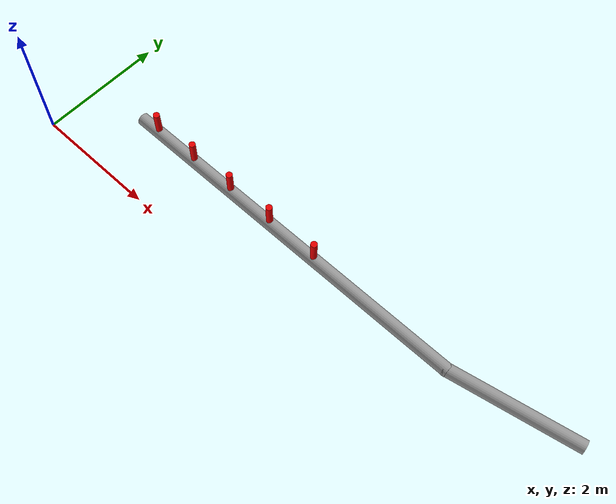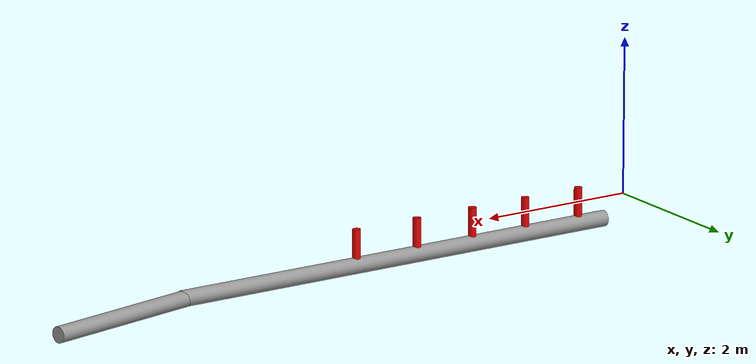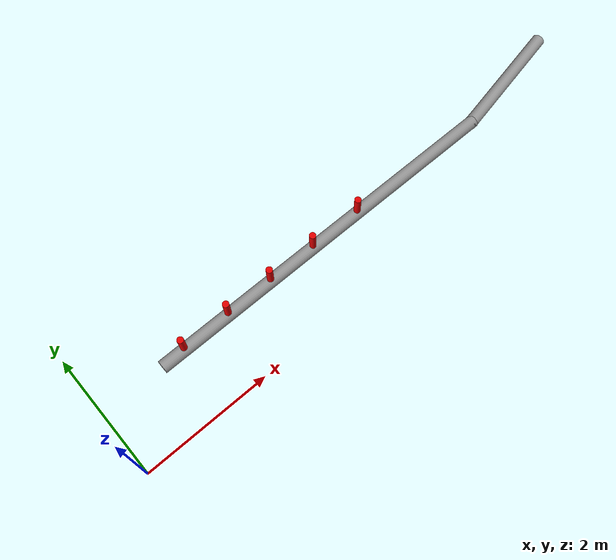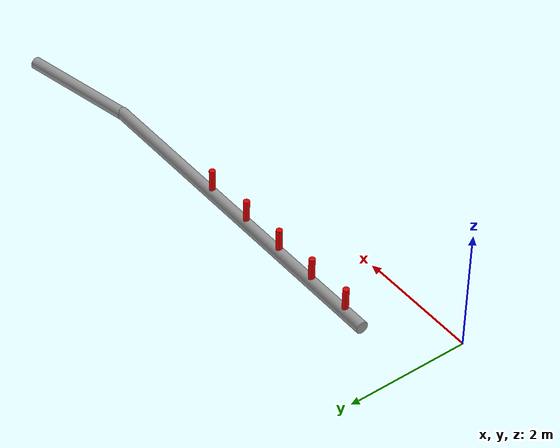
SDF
<sdf version="1.5">
 <world name="default">
  <include><uri>model://mini_pipe5</uri><pose>4.578331295044317 1.0 0.3 0 0 0</pose></include>
  <include><uri>model://mini_pipe4</uri><pose>3.722362272123487 1.0 0.3 0 0 0</pose></include>
  <include><uri>model://mini_pipe3</uri><pose>2.9295737917648363 1.0 0.3 0 0 0</pose></include>
  <include><uri>model://mini_pipe2</uri><pose>2.1614057173151826 1.0 0.3 0 0 0</pose></include>
  <include><uri>model://mini_pipe1</uri><pose>1.3871997787144534 1.0 0.3 0 0 0</pose></include>
  <include><uri>model://big_tube_with_angle</uri><pose>4.0 1.0 0.1 0 0 0</pose></include>
  <include><uri>model://sun</uri></include>
  <scene>
   <ambient>0.8 0.8 0.8 1</ambient>
   <background>0.8 0.9 1 1</background>
   <shadows>false</shadows>
   <grid>false</grid>
   <origin_visual>false</origin_visual>
  </scene>
  <physics name="default_physics" default="0" type="ode">
   <gravity>0 0 -9.8066</gravity>
   <ode>
    <solver>
     <type>quick</type>
     <iters>10</iters>
     <sor>1.3</sor>
     <use_dynamic_moi_rescaling>0</use_dynamic_moi_rescaling>
    </solver>
    <constraints>
     <cfm>0</cfm>
     <erp>0.2</erp>
     <contact_max_correcting_vel>100</contact_max_correcting_vel>
     <contact_surface_layer>0.001</contact_surface_layer>
    </constraints>
   </ode>
   <max_step_size>0.004</max_step_size>
   <real_time_factor>1</real_time_factor>
   <real_time_update_rate>250</real_time_update_rate>
   <magnetic_field>6.0e-6 2.3e-5 -4.2e-5</magnetic_field>
  </physics>
 </world>
</sdf>

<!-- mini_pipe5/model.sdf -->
<sdf version='1.7'>
  <model name='mini_pipe5'>
    <static>true</static>
    <link name='link'>
      <inertial>
        <mass>1</mass>
        <inertia>
          <ixx>0.145833</ixx>
          <ixy>0</ixy>
          <ixz>0</ixz>
          <iyy>0.145833</iyy>
          <iyz>0</iyz>
          <izz>0.125</izz>
        </inertia>
        <pose>0 0 0 0 -0 0</pose>
      </inertial>
      <self_collide>0</self_collide>
      <enable_wind>0</enable_wind>
      <kinematic>0</kinematic>
      <pose>0 0 0 0 -0 0</pose>
      <gravity>0</gravity>
      <visual name='visual'>
        <geometry>
          <cylinder>
            <radius>0.05</radius>
            <length>0.5</length>
          </cylinder>
        </geometry>
        <material>
          <script>
            <name>Gazebo/Grey</name>
            <uri>file://media/materials/scripts/gazebo.material</uri>
          </script>
          <shader type='pixel'>
            <normal_map>__default__</normal_map>
          </shader>
          <ambient>0.9 0 0 1</ambient>
          <diffuse>0.9 0 0 1</diffuse>
          <specular>0.01 0.01 0.01 1</specular>
          <emissive>0 0 0 1</emissive>
        </material>
        <pose>0 0 0 0 -0 0</pose>
        <transparency>0</transparency>
        <cast_shadows>1</cast_shadows>
      </visual>
      <collision name='collision'>
        <laser_retro>0</laser_retro>
        <max_contacts>10</max_contacts>
        <pose>0 0 0 0 -0 0</pose>
        <geometry>
          <cylinder>
            <radius>0.05</radius>
            <length>0.5</length>
          </cylinder>
        </geometry>
        <surface>
          <friction>
            <ode>
              <mu>1</mu>
              <mu2>1</mu2>
              <fdir1>0 0 0</fdir1>
              <slip1>0</slip1>
              <slip2>0</slip2>
            </ode>
            <torsional>
              <coefficient>1</coefficient>
              <patch_radius>0</patch_radius>
              <surface_radius>0</surface_radius>
              <use_patch_radius>1</use_patch_radius>
              <ode>
                <slip>0</slip>
              </ode>
            </torsional>
          </friction>
          <bounce>
            <restitution_coefficient>0</restitution_coefficient>
            <threshold>1e+06</threshold>
          </bounce>
          <contact>
            <collide_without_contact>0</collide_without_contact>
            <collide_without_contact_bitmask>1</collide_without_contact_bitmask>
            <collide_bitmask>1</collide_bitmask>
            <ode>
              <soft_cfm>0</soft_cfm>
              <soft_erp>0.2</soft_erp>
              <kp>1e+13</kp>
              <kd>1</kd>
              <max_vel>0.01</max_vel>
              <min_depth>0</min_depth>
            </ode>
            <bullet>
              <split_impulse>1</split_impulse>
              <split_impulse_penetration_threshold>-0.01</split_impulse_penetration_threshold>
              <soft_cfm>0</soft_cfm>
              <soft_erp>0.2</soft_erp>
              <kp>1e+13</kp>
              <kd>1</kd>
            </bullet>
          </contact>
        </surface>
      </collision>
    </link>
    <static>0</static>
    <allow_auto_disable>1</allow_auto_disable>
  </model>
</sdf>

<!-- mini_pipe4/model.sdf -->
<sdf version='1.7'>
  <model name='mini_pipe4'>
    <static>true</static>
    <link name='link'>
      <inertial>
        <mass>1</mass>
        <inertia>
          <ixx>0.145833</ixx>
          <ixy>0</ixy>
          <ixz>0</ixz>
          <iyy>0.145833</iyy>
          <iyz>0</iyz>
          <izz>0.125</izz>
        </inertia>
        <pose>0 0 0 0 -0 0</pose>
      </inertial>
      <self_collide>0</self_collide>
      <enable_wind>0</enable_wind>
      <kinematic>0</kinematic>
      <pose>0 0 0 0 -0 0</pose>
      <gravity>0</gravity>
      <visual name='visual'>
        <geometry>
          <cylinder>
            <radius>0.05</radius>
            <length>0.5</length>
          </cylinder>
        </geometry>
        <material>
          <script>
            <name>Gazebo/Grey</name>
            <uri>file://media/materials/scripts/gazebo.material</uri>
          </script>
          <shader type='pixel'>
            <normal_map>__default__</normal_map>
          </shader>
          <ambient>0.9 0 0 1</ambient>
          <diffuse>0.9 0 0 1</diffuse>
          <specular>0.01 0.01 0.01 1</specular>
          <emissive>0 0 0 1</emissive>
        </material>
        <pose>0 0 0 0 -0 0</pose>
        <transparency>0</transparency>
        <cast_shadows>1</cast_shadows>
      </visual>
      <collision name='collision'>
        <laser_retro>0</laser_retro>
        <max_contacts>10</max_contacts>
        <pose>0 0 0 0 -0 0</pose>
        <geometry>
          <cylinder>
            <radius>0.05</radius>
            <length>0.5</length>
          </cylinder>
        </geometry>
        <surface>
          <friction>
            <ode>
              <mu>1</mu>
              <mu2>1</mu2>
              <fdir1>0 0 0</fdir1>
              <slip1>0</slip1>
              <slip2>0</slip2>
            </ode>
            <torsional>
              <coefficient>1</coefficient>
              <patch_radius>0</patch_radius>
              <surface_radius>0</surface_radius>
              <use_patch_radius>1</use_patch_radius>
              <ode>
                <slip>0</slip>
              </ode>
            </torsional>
          </friction>
          <bounce>
            <restitution_coefficient>0</restitution_coefficient>
            <threshold>1e+06</threshold>
          </bounce>
          <contact>
            <collide_without_contact>0</collide_without_contact>
            <collide_without_contact_bitmask>1</collide_without_contact_bitmask>
            <collide_bitmask>1</collide_bitmask>
            <ode>
              <soft_cfm>0</soft_cfm>
              <soft_erp>0.2</soft_erp>
              <kp>1e+13</kp>
              <kd>1</kd>
              <max_vel>0.01</max_vel>
              <min_depth>0</min_depth>
            </ode>
            <bullet>
              <split_impulse>1</split_impulse>
              <split_impulse_penetration_threshold>-0.01</split_impulse_penetration_threshold>
              <soft_cfm>0</soft_cfm>
              <soft_erp>0.2</soft_erp>
              <kp>1e+13</kp>
              <kd>1</kd>
            </bullet>
          </contact>
        </surface>
      </collision>
    </link>
    <static>0</static>
    <allow_auto_disable>1</allow_auto_disable>
  </model>
</sdf>

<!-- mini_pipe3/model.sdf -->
<sdf version='1.7'>
  <model name='mini_pipe3'>
    <static>true</static>
    <link name='link'>
      <inertial>
        <mass>1</mass>
        <inertia>
          <ixx>0.145833</ixx>
          <ixy>0</ixy>
          <ixz>0</ixz>
          <iyy>0.145833</iyy>
          <iyz>0</iyz>
          <izz>0.125</izz>
        </inertia>
        <pose>0 0 0 0 -0 0</pose>
      </inertial>
      <self_collide>0</self_collide>
      <enable_wind>0</enable_wind>
      <kinematic>0</kinematic>
      <pose>0 0 0 0 -0 0</pose>
      <gravity>0</gravity>
      <visual name='visual'>
        <geometry>
          <cylinder>
            <radius>0.05</radius>
            <length>0.5</length>
          </cylinder>
        </geometry>
        <material>
          <script>
            <name>Gazebo/Grey</name>
            <uri>file://media/materials/scripts/gazebo.material</uri>
          </script>
          <shader type='pixel'>
            <normal_map>__default__</normal_map>
          </shader>
          <ambient>0.9 0 0 1</ambient>
          <diffuse>0.9 0 0 1</diffuse>
          <specular>0.01 0.01 0.01 1</specular>
          <emissive>0 0 0 1</emissive>
        </material>
        <pose>0 0 0 0 -0 0</pose>
        <transparency>0</transparency>
        <cast_shadows>1</cast_shadows>
      </visual>
      <collision name='collision'>
        <laser_retro>0</laser_retro>
        <max_contacts>10</max_contacts>
        <pose>0 0 0 0 -0 0</pose>
        <geometry>
          <cylinder>
            <radius>0.05</radius>
            <length>0.5</length>
          </cylinder>
        </geometry>
        <surface>
          <friction>
            <ode>
              <mu>1</mu>
              <mu2>1</mu2>
              <fdir1>0 0 0</fdir1>
              <slip1>0</slip1>
              <slip2>0</slip2>
            </ode>
            <torsional>
              <coefficient>1</coefficient>
              <patch_radius>0</patch_radius>
              <surface_radius>0</surface_radius>
              <use_patch_radius>1</use_patch_radius>
              <ode>
                <slip>0</slip>
              </ode>
            </torsional>
          </friction>
          <bounce>
            <restitution_coefficient>0</restitution_coefficient>
            <threshold>1e+06</threshold>
          </bounce>
          <contact>
            <collide_without_contact>0</collide_without_contact>
            <collide_without_contact_bitmask>1</collide_without_contact_bitmask>
            <collide_bitmask>1</collide_bitmask>
            <ode>
              <soft_cfm>0</soft_cfm>
              <soft_erp>0.2</soft_erp>
              <kp>1e+13</kp>
              <kd>1</kd>
              <max_vel>0.01</max_vel>
              <min_depth>0</min_depth>
            </ode>
            <bullet>
              <split_impulse>1</split_impulse>
              <split_impulse_penetration_threshold>-0.01</split_impulse_penetration_threshold>
              <soft_cfm>0</soft_cfm>
              <soft_erp>0.2</soft_erp>
              <kp>1e+13</kp>
              <kd>1</kd>
            </bullet>
          </contact>
        </surface>
      </collision>
    </link>
    <static>0</static>
    <allow_auto_disable>1</allow_auto_disable>
  </model>
</sdf>

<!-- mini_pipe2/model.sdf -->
<sdf version='1.7'>
  <model name='mini_pipe2'>
    <static>true</static>
    <link name='link'>
      <inertial>
        <mass>1</mass>
        <inertia>
          <ixx>0.145833</ixx>
          <ixy>0</ixy>
          <ixz>0</ixz>
          <iyy>0.145833</iyy>
          <iyz>0</iyz>
          <izz>0.125</izz>
        </inertia>
        <pose>0 0 0 0 -0 0</pose>
      </inertial>
      <self_collide>0</self_collide>
      <enable_wind>0</enable_wind>
      <kinematic>0</kinematic>
      <pose>0 0 0 0 -0 0</pose>
      <gravity>0</gravity>
      <visual name='visual'>
        <geometry>
          <cylinder>
            <radius>0.05</radius>
            <length>0.5</length>
          </cylinder>
        </geometry>
        <material>
          <script>
            <name>Gazebo/Grey</name>
            <uri>file://media/materials/scripts/gazebo.material</uri>
          </script>
          <shader type='pixel'>
            <normal_map>__default__</normal_map>
          </shader>
          <ambient>0.9 0 0 1</ambient>
          <diffuse>0.9 0 0 1</diffuse>
          <specular>0.01 0.01 0.01 1</specular>
          <emissive>0 0 0 1</emissive>
        </material>
        <pose>0 0 0 0 -0 0</pose>
        <transparency>0</transparency>
        <cast_shadows>1</cast_shadows>
      </visual>
      <collision name='collision'>
        <laser_retro>0</laser_retro>
        <max_contacts>10</max_contacts>
        <pose>0 0 0 0 -0 0</pose>
        <geometry>
          <cylinder>
            <radius>0.05</radius>
            <length>0.5</length>
          </cylinder>
        </geometry>
        <surface>
          <friction>
            <ode>
              <mu>1</mu>
              <mu2>1</mu2>
              <fdir1>0 0 0</fdir1>
              <slip1>0</slip1>
              <slip2>0</slip2>
            </ode>
            <torsional>
              <coefficient>1</coefficient>
              <patch_radius>0</patch_radius>
              <surface_radius>0</surface_radius>
              <use_patch_radius>1</use_patch_radius>
              <ode>
                <slip>0</slip>
              </ode>
            </torsional>
          </friction>
          <bounce>
            <restitution_coefficient>0</restitution_coefficient>
            <threshold>1e+06</threshold>
          </bounce>
          <contact>
            <collide_without_contact>0</collide_without_contact>
            <collide_without_contact_bitmask>1</collide_without_contact_bitmask>
            <collide_bitmask>1</collide_bitmask>
            <ode>
              <soft_cfm>0</soft_cfm>
              <soft_erp>0.2</soft_erp>
              <kp>1e+13</kp>
              <kd>1</kd>
              <max_vel>0.01</max_vel>
              <min_depth>0</min_depth>
            </ode>
            <bullet>
              <split_impulse>1</split_impulse>
              <split_impulse_penetration_threshold>-0.01</split_impulse_penetration_threshold>
              <soft_cfm>0</soft_cfm>
              <soft_erp>0.2</soft_erp>
              <kp>1e+13</kp>
              <kd>1</kd>
            </bullet>
          </contact>
        </surface>
      </collision>
    </link>
    <static>0</static>
    <allow_auto_disable>1</allow_auto_disable>
  </model>
</sdf>

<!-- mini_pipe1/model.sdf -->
<sdf version='1.7'>
  <model name='mini_pipe1'>
    <static>true</static>
    <link name='link'>
      <inertial>
        <mass>1</mass>
        <inertia>
          <ixx>0.145833</ixx>
          <ixy>0</ixy>
          <ixz>0</ixz>
          <iyy>0.145833</iyy>
          <iyz>0</iyz>
          <izz>0.125</izz>
        </inertia>
        <pose>0 0 0 0 -0 0</pose>
      </inertial>
      <self_collide>0</self_collide>
      <enable_wind>0</enable_wind>
      <kinematic>0</kinematic>
      <pose>0 0 0 0 -0 0</pose>
      <gravity>0</gravity>
      <visual name='visual'>
        <geometry>
          <cylinder>
            <radius>0.05</radius>
            <length>0.5</length>
          </cylinder>
        </geometry>
        <material>
          <script>
            <name>Gazebo/Grey</name>
            <uri>file://media/materials/scripts/gazebo.material</uri>
          </script>
          <shader type='pixel'>
            <normal_map>__default__</normal_map>
          </shader>
          <ambient>0.9 0 0 1</ambient>
          <diffuse>0.9 0 0 1</diffuse>
          <specular>0.01 0.01 0.01 1</specular>
          <emissive>0 0 0 1</emissive>
        </material>
        <pose>0 0 0 0 -0 0</pose>
        <transparency>0</transparency>
        <cast_shadows>1</cast_shadows>
      </visual>
      <collision name='collision'>
        <laser_retro>0</laser_retro>
        <max_contacts>10</max_contacts>
        <pose>0 0 0 0 -0 0</pose>
        <geometry>
          <cylinder>
            <radius>0.05</radius>
            <length>0.5</length>
          </cylinder>
        </geometry>
        <surface>
          <friction>
            <ode>
              <mu>1</mu>
              <mu2>1</mu2>
              <fdir1>0 0 0</fdir1>
              <slip1>0</slip1>
              <slip2>0</slip2>
            </ode>
            <torsional>
              <coefficient>1</coefficient>
              <patch_radius>0</patch_radius>
              <surface_radius>0</surface_radius>
              <use_patch_radius>1</use_patch_radius>
              <ode>
                <slip>0</slip>
              </ode>
            </torsional>
          </friction>
          <bounce>
            <restitution_coefficient>0</restitution_coefficient>
            <threshold>1e+06</threshold>
          </bounce>
          <contact>
            <collide_without_contact>0</collide_without_contact>
            <collide_without_contact_bitmask>1</collide_without_contact_bitmask>
            <collide_bitmask>1</collide_bitmask>
            <ode>
              <soft_cfm>0</soft_cfm>
              <soft_erp>0.2</soft_erp>
              <kp>1e+13</kp>
              <kd>1</kd>
              <max_vel>0.01</max_vel>
              <min_depth>0</min_depth>
            </ode>
            <bullet>
              <split_impulse>1</split_impulse>
              <split_impulse_penetration_threshold>-0.01</split_impulse_penetration_threshold>
              <soft_cfm>0</soft_cfm>
              <soft_erp>0.2</soft_erp>
              <kp>1e+13</kp>
              <kd>1</kd>
            </bullet>
          </contact>
        </surface>
      </collision>
    </link>
    <static>0</static>
    <allow_auto_disable>1</allow_auto_disable>
  </model>
</sdf>

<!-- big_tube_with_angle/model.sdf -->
<sdf version='1.7'>
  <model name='big_tube_with_angle'>
    <static>true</static>
    <link name='link'>
      <inertial>
        <mass>1</mass>
        <inertia>
          <ixx>0.145833</ixx>
          <ixy>0</ixy>
          <ixz>0</ixz>
          <iyy>0.145833</iyy>
          <iyz>0</iyz>
          <izz>0.125</izz>
        </inertia>
        <pose>0 0 0 0 -0 0</pose>
      </inertial>
      <self_collide>0</self_collide>
      <enable_wind>0</enable_wind>
      <kinematic>0</kinematic>
      <pose>0 0 0 0 -0 0</pose>
      <gravity>0</gravity>
      <visual name='visual'>
        <geometry>
          <cylinder>
            <radius>0.1</radius>
            <length>6</length>
          </cylinder>
        </geometry>
        <material>
          <script>
            <name>Gazebo/Grey</name>
            <uri>file://media/materials/scripts/gazebo.material</uri>
          </script>
          <shader type='pixel'>
            <normal_map>__default__</normal_map>
          </shader>
          <ambient>0.3 0.3 0.3 1</ambient>
          <diffuse>0.7 0.7 0.7 1</diffuse>
          <specular>0.01 0.01 0.01 1</specular>
          <emissive>0 0 0 1</emissive>
        </material>
        <pose>0 0 0 0 1.57 0</pose>
        <transparency>0</transparency>
        <cast_shadows>1</cast_shadows>
      </visual>
      <collision name='collision'>
        <laser_retro>0</laser_retro>
        <max_contacts>10</max_contacts>
        <pose>0 0 0 0 1.57 0</pose>
        <geometry>
          <cylinder>
            <radius>0.1</radius>
            <length>6</length>
          </cylinder>
        </geometry>
        <surface>
          <friction>
            <ode>
              <mu>1</mu>
              <mu2>1</mu2>
              <fdir1>0 0 0</fdir1>
              <slip1>0</slip1>
              <slip2>0</slip2>
            </ode>
            <torsional>
              <coefficient>1</coefficient>
              <patch_radius>0</patch_radius>
              <surface_radius>0</surface_radius>
              <use_patch_radius>1</use_patch_radius>
              <ode>
                <slip>0</slip>
              </ode>
            </torsional>
          </friction>
          <bounce>
            <restitution_coefficient>0</restitution_coefficient>
            <threshold>1e+06</threshold>
          </bounce>
          <contact>
            <collide_without_contact>0</collide_without_contact>
            <collide_without_contact_bitmask>1</collide_without_contact_bitmask>
            <collide_bitmask>1</collide_bitmask>
            <ode>
              <soft_cfm>0</soft_cfm>
              <soft_erp>0.2</soft_erp>
              <kp>1e+13</kp>
              <kd>1</kd>
              <max_vel>0.01</max_vel>
              <min_depth>0</min_depth>
            </ode>
            <bullet>
              <split_impulse>1</split_impulse>
              <split_impulse_penetration_threshold>-0.01</split_impulse_penetration_threshold>
              <soft_cfm>0</soft_cfm>
              <soft_erp>0.2</soft_erp>
              <kp>1e+13</kp>
              <kd>1</kd>
            </bullet>
          </contact>
        </surface>
      </collision>
    </link>
    <link name='link_clone'>
      <inertial>
        <mass>1</mass>
        <inertia>
          <ixx>0.145833</ixx>
          <ixy>0</ixy>
          <ixz>0</ixz>
          <iyy>0.145833</iyy>
          <iyz>0</iyz>
          <izz>0.125</izz>
        </inertia>
        <pose>0 0 0 0 -0 0</pose>
      </inertial>
      <self_collide>0</self_collide>
      <enable_wind>0</enable_wind>
      <kinematic>0</kinematic>
      <pose>3.90573 0.192289 -0.000267 1.8e-05 6.9e-05 -1.2e-05</pose>
      <gravity>0</gravity>
      <visual name='visual'>
        <geometry>
          <cylinder>
            <radius>0.1</radius>
            <length>2</length>
          </cylinder>
        </geometry>
        <material>
          <script>
            <name>Gazebo/Grey</name>
            <uri>file://media/materials/scripts/gazebo.material</uri>
          </script>
          <shader type='pixel'>
            <normal_map>__default__</normal_map>
          </shader>
          <ambient>0.3 0.3 0.3 1</ambient>
          <diffuse>0.7 0.7 0.7 1</diffuse>
          <specular>0.01 0.01 0.01 1</specular>
          <emissive>0 0 0 1</emissive>
        </material>
        <pose>0 0 0 1.1e-05 1.57 0.200011</pose>
        <transparency>0</transparency>
        <cast_shadows>1</cast_shadows>
      </visual>
      <collision name='collision'>
        <laser_retro>0</laser_retro>
        <max_contacts>10</max_contacts>
        <pose>0 0 0 0 1.57 0.2</pose>
        <geometry>
          <cylinder>
            <radius>0.1</radius>
            <length>2</length>
          </cylinder>
        </geometry>
        <surface>
          <friction>
            <ode>
              <mu>1</mu>
              <mu2>1</mu2>
              <fdir1>0 0 0</fdir1>
              <slip1>0</slip1>
              <slip2>0</slip2>
            </ode>
            <torsional>
              <coefficient>1</coefficient>
              <patch_radius>0</patch_radius>
              <surface_radius>0</surface_radius>
              <use_patch_radius>1</use_patch_radius>
              <ode>
                <slip>0</slip>
              </ode>
            </torsional>
          </friction>
          <bounce>
            <restitution_coefficient>0</restitution_coefficient>
            <threshold>1e+06</threshold>
          </bounce>
          <contact>
            <collide_without_contact>0</collide_without_contact>
            <collide_without_contact_bitmask>1</collide_without_contact_bitmask>
            <collide_bitmask>1</collide_bitmask>
            <ode>
              <soft_cfm>0</soft_cfm>
              <soft_erp>0.2</soft_erp>
              <kp>1e+13</kp>
              <kd>1</kd>
              <max_vel>0.01</max_vel>
              <min_depth>0</min_depth>
            </ode>
            <bullet>
              <split_impulse>1</split_impulse>
              <split_impulse_penetration_threshold>-0.01</split_impulse_penetration_threshold>
              <soft_cfm>0</soft_cfm>
              <soft_erp>0.2</soft_erp>
              <kp>1e+13</kp>
              <kd>1</kd>
            </bullet>
          </contact>
        </surface>
      </collision>
    </link>
    <static>0</static>
    <allow_auto_disable>1</allow_auto_disable>
  </model>
</sdf>
